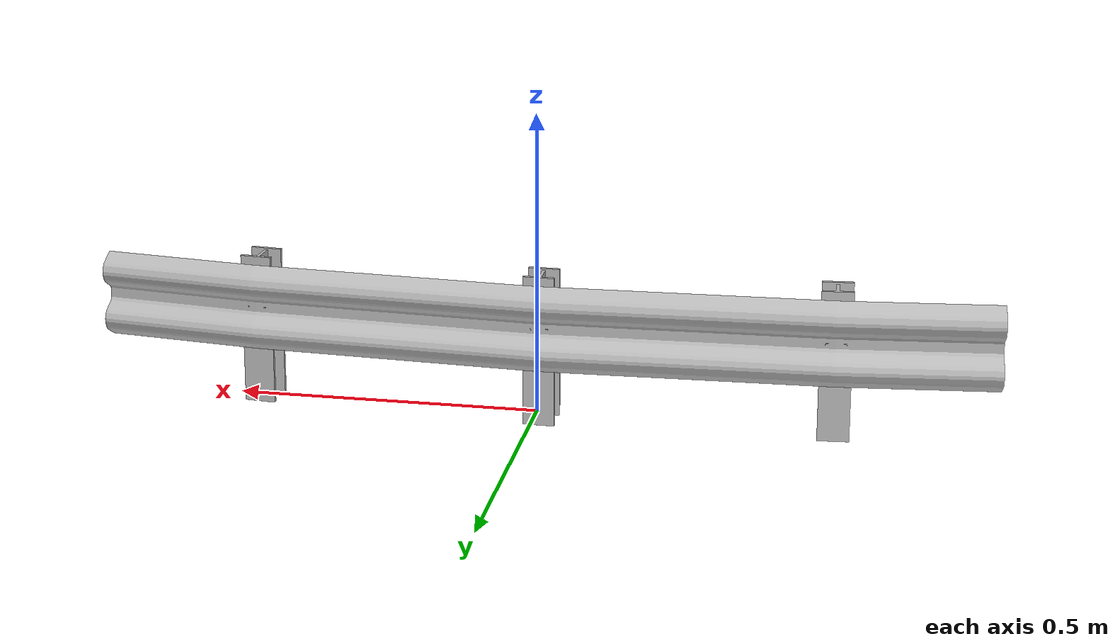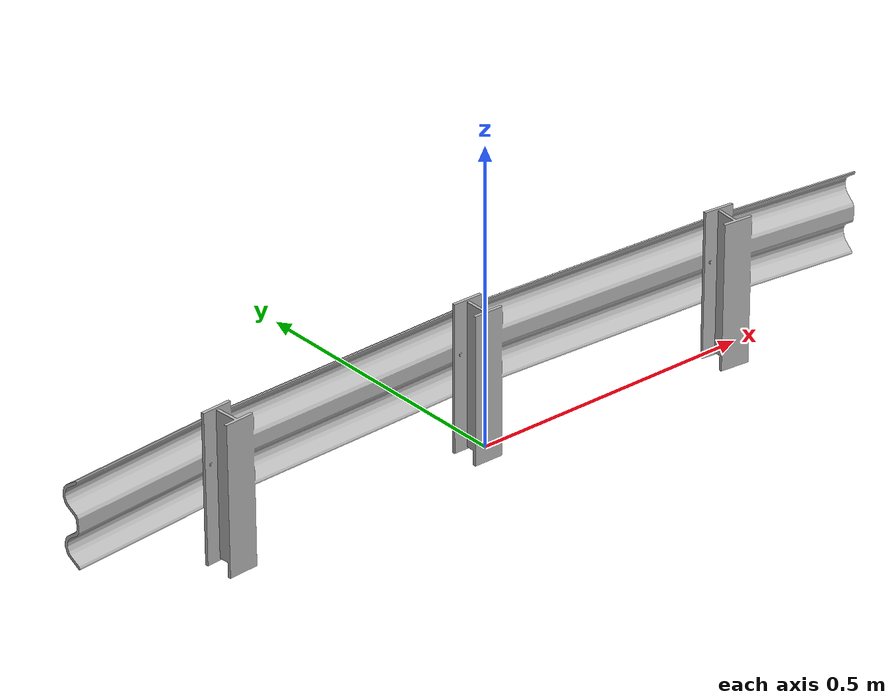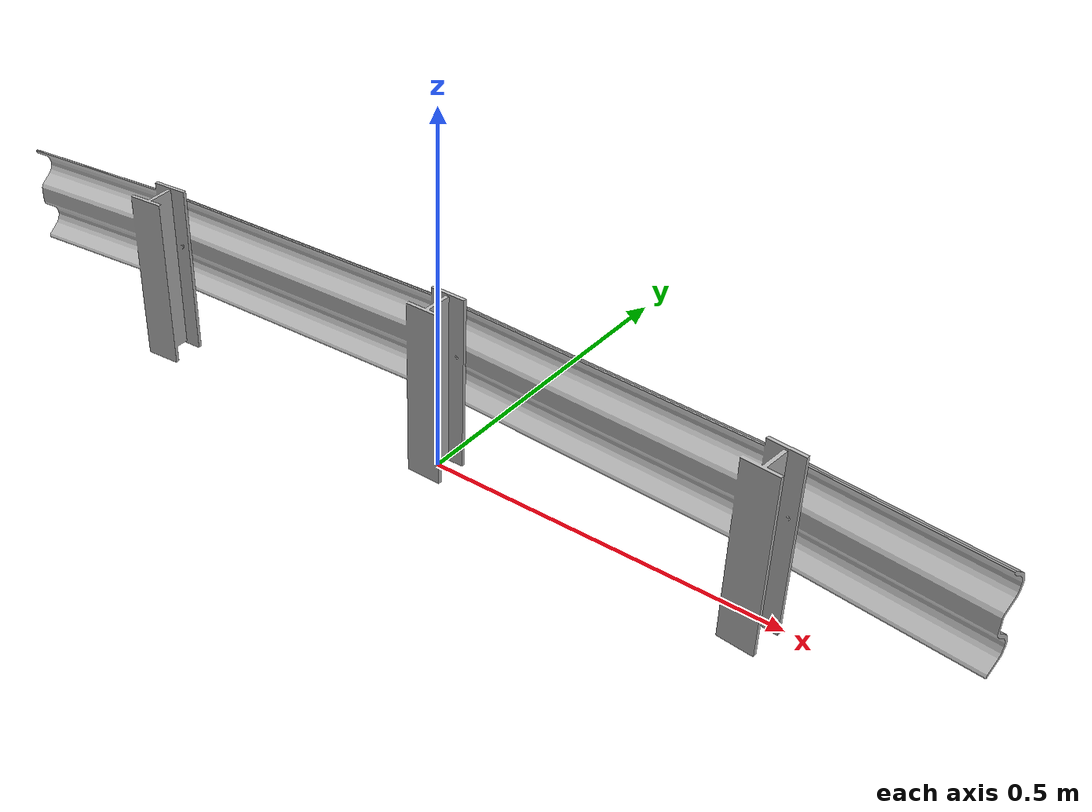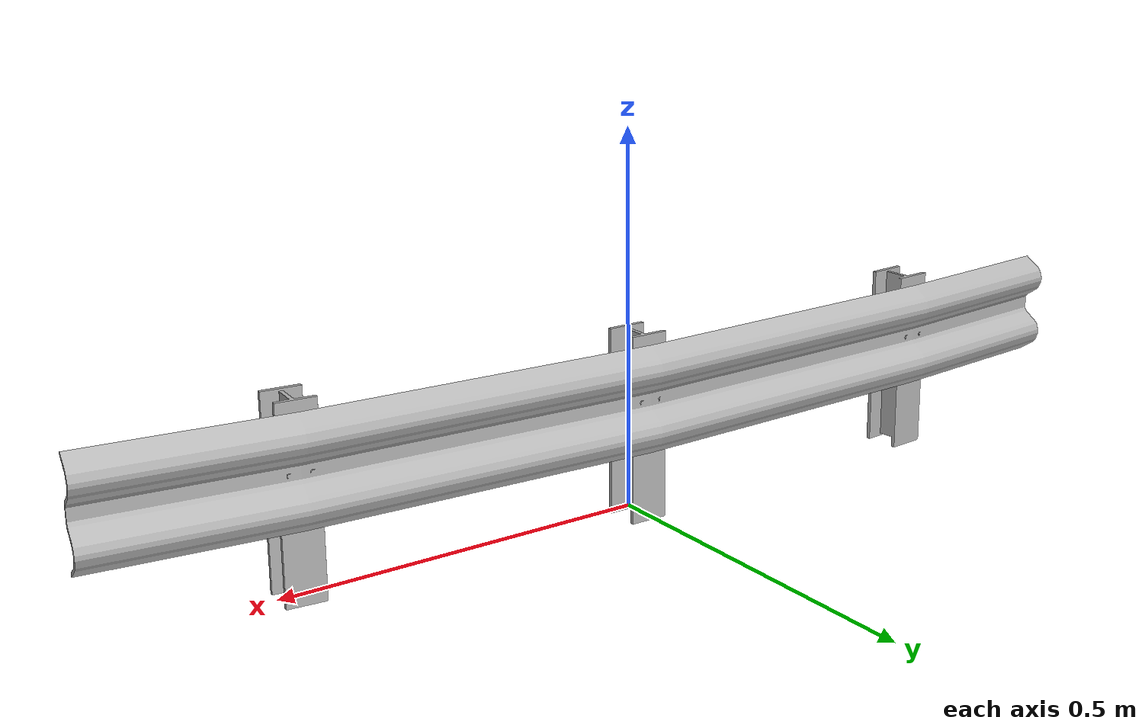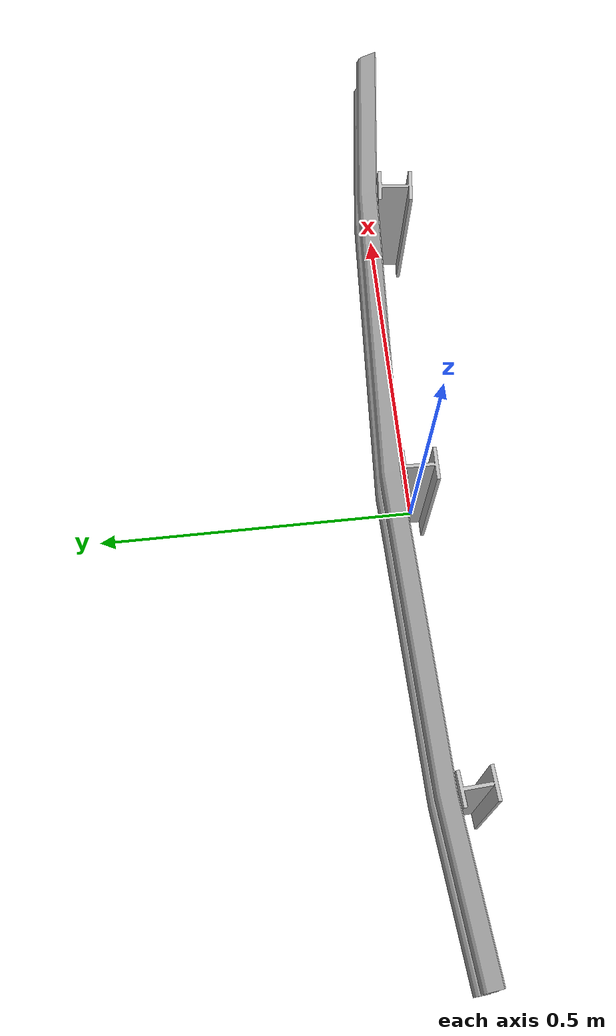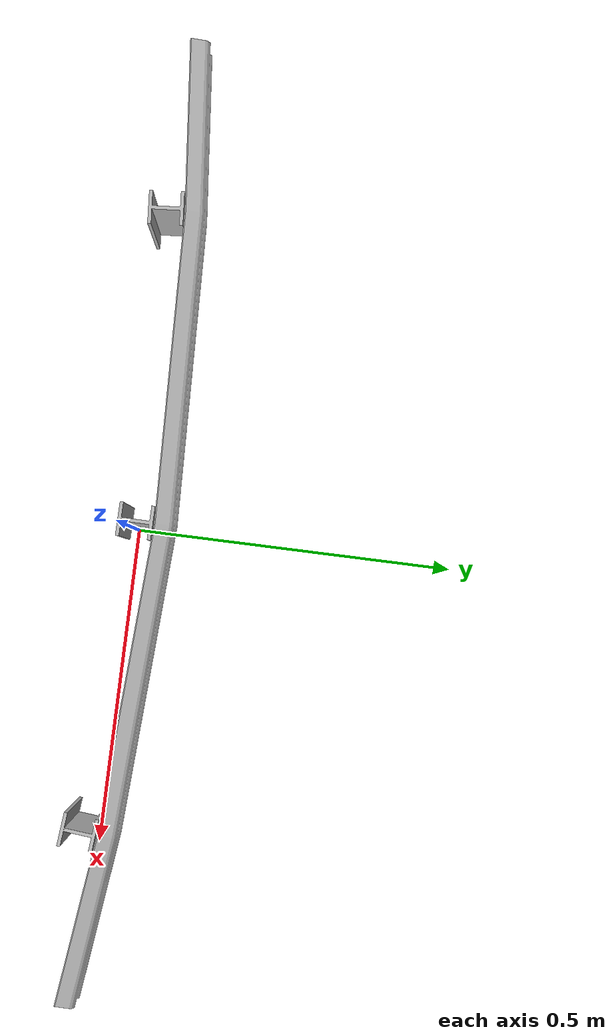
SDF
<?xml version='1.0'?>
<sdf version='1.6'>
  <model name='guardrail_inner_curve'>
    <link name='link'>
      <pose frame=''>0 0 0 0 0 0</pose>
      <visual name='visual'>
        <pose frame=''>0 0 0 0 0 0</pose>
        <geometry>
          <mesh>
            <uri>model://guardrail_inner_curve/meshes/guardrail_inner_curve.dae</uri>
            <scale>0.0025 0.0025 0.0025</scale>
          </mesh>
        </geometry>
        <cast_shadows>1</cast_shadows>
        <transparency>0</transparency>
      </visual>
      <collision name='collision'>
        <laser_retro>0</laser_retro>
        <max_contacts>10</max_contacts>
        <pose frame=''>0 0 0 0 -0 0</pose>
        <geometry>
          <mesh>
            <uri>model://guardrail_inner_curve/meshes/guardrail_inner_curve.dae</uri>
            <scale>0.0025 0.0025 0.0025</scale>
          </mesh>
        </geometry>
      </collision>
    </link>
    <static>1</static>
    <allow_auto_disable>1</allow_auto_disable>
  </model>
</sdf>
